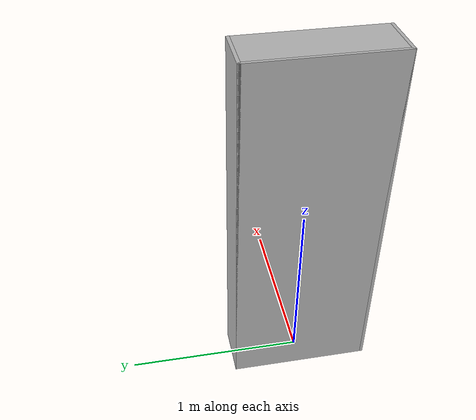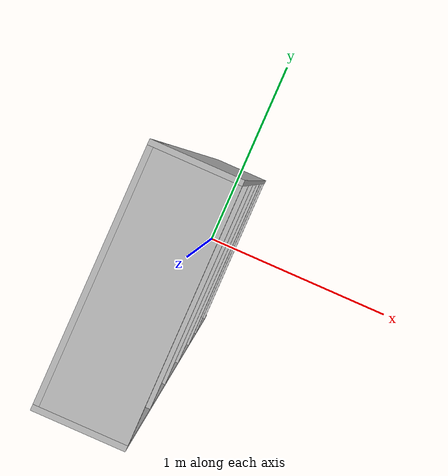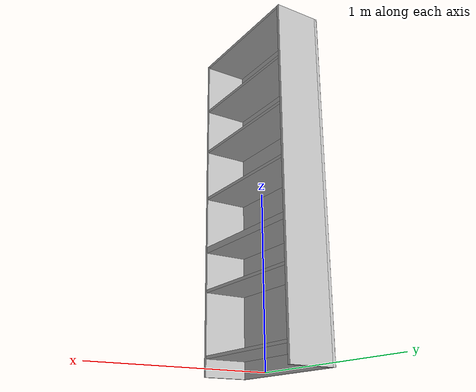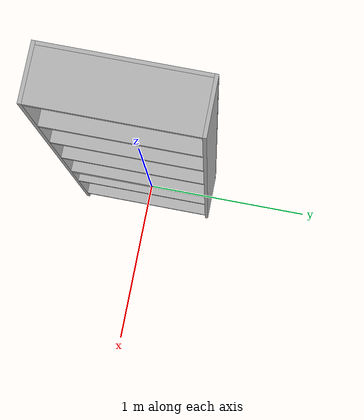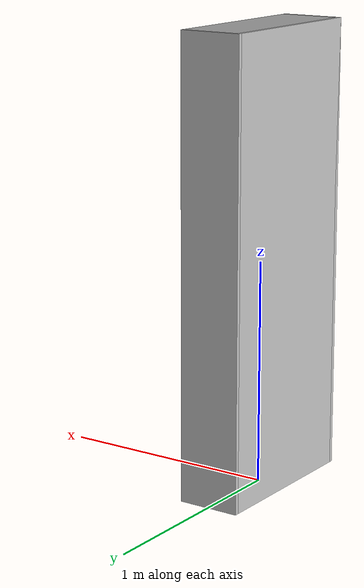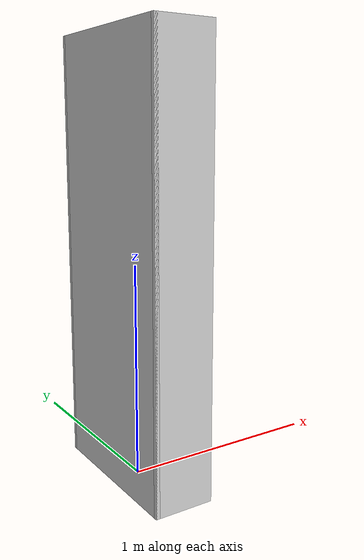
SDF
<?xml version="1.0"?>
<sdf version="1.6">
  <model name="rwc2019/shelf">
    <link name="1_link">
      <collision name="1_col">
        <geometry>
          <box>
            <size>0.28 0.018 2.02</size>
          </box>
        </geometry>
      </collision>
      <visual name="1_vis">
        <geometry>
          <box>
            <size>0.28 0.018 2.02</size>
          </box>
        </geometry>
      </visual>
      <pose>0.0 -0.391 1.01 0 0 0</pose>
    </link>
    <link name="door_link">
      <collision name="door_col">
        <geometry>
          <box>
            <size>0.391 0.018 1.01</size>
          </box>
        </geometry>
      </collision>
      <pose>0.3355 -0.391 0.505 0 0 0</pose>
    </link>
    <link name="2_link">
      <collision name="2_col">
        <geometry>
          <box>
            <size>0.28 0.018 2.02</size>
          </box>
        </geometry>
      </collision>
      <visual name="2_vis">
        <geometry>
          <box>
            <size>0.28 0.018 2.02</size>
          </box>
        </geometry>
      </visual>
      <pose>0.0 0.391 1.01 0 0 0</pose>
    </link>
    <link name="3_link">
      <collision name="3_col">
        <geometry>
          <box>
            <size>0.018 0.8 2.02</size>
          </box>
        </geometry>
      </collision>
      <visual name="3_vis">
        <geometry>
          <box>
            <size>0.018 0.8 2.02</size>
          </box>
        </geometry>
      </visual>
      <pose>-0.131 0.0 1.01 0 0 0</pose>
    </link>
    <link name="4_link">
      <collision name="4_col">
        <geometry>
          <box>
            <size>0.262 0.764 0.018</size>
          </box>
        </geometry>
      </collision>
      <visual name="4_vis">
        <geometry>
          <box>
            <size>0.262 0.764 0.018</size>
          </box>
        </geometry>
      </visual>
      <pose>0.009 0.0 2.011 0 0 0</pose>
    </link>
    <link name="5_link">
      <collision name="5_col">
        <geometry>
          <box>
            <size>0.262 0.764 0.018</size>
          </box>
        </geometry>
      </collision>
      <visual name="5_vis">
        <geometry>
          <box>
            <size>0.262 0.764 0.018</size>
          </box>
        </geometry>
      </visual>
      <pose>0.009 0.0 0.109 0 0 0</pose>
    </link>
    <link name="6_link">
      <collision name="6_col">
        <geometry>
          <box>
            <size>0.262 0.764 0.018</size>
          </box>
        </geometry>
      </collision>
      <visual name="6_vis">
        <geometry>
          <box>
            <size>0.262 0.764 0.018</size>
          </box>
        </geometry>
      </visual>
      <pose>0.009 0.0 0.489 0 0 0</pose>
    </link>
    <link name="7_link">
      <collision name="7_col">
        <geometry>
          <box>
            <size>0.262 0.764 0.038</size>
          </box>
        </geometry>
      </collision>
      <visual name="7_vis">
        <geometry>
          <box>
            <size>0.262 0.764 0.038</size>
          </box>
        </geometry>
      </visual>
      <pose>0.009 0.0 0.739 0 0 0</pose>
    </link>
    <link name="8_link">
      <collision name="8_col">
        <geometry>
          <box>
            <size>0.262 0.764 0.018</size>
          </box>
        </geometry>
      </collision>
      <visual name="8_vis">
        <geometry>
          <box>
            <size>0.262 0.764 0.018</size>
          </box>
        </geometry>
      </visual>
      <pose>0.009 0.0 1.071 0 0 0</pose>
    </link>
    <link name="9_link">
      <collision name="9_col">
        <geometry>
          <box>
            <size>0.262 0.764 0.018</size>
          </box>
        </geometry>
      </collision>
      <visual name="9_vis">
        <geometry>
          <box>
            <size>0.262 0.764 0.018</size>
          </box>
        </geometry>
      </visual>
      <pose>0.009 0.0 1.389 0 0 0</pose>
    </link>
    <link name="10_link">
      <collision name="10_col">
        <geometry>
          <box>
            <size>0.262 0.764 0.018</size>
          </box>
        </geometry>
      </collision>
      <visual name="10_vis">
        <geometry>
          <box>
            <size>0.262 0.764 0.018</size>
          </box>
        </geometry>
      </visual>
      <pose>0.009 0.0 1.679 0 0 0</pose>
    </link>
    <link name="in_front_of">
      <virtual_volume name="in_front_of_vv">
        <geometry>
          <box>
            <size>0.2 0.6 0.01</size>
          </box>
        </geometry>
        <pose>0.64 0.0 0.005 0 0 0</pose>
      </virtual_volume>
    </link>
    <link name="shelf1">
      <virtual_volume name="shelf1_vv">
        <geometry>
          <box>
            <size>0.222 0.704 0.25</size>
          </box>
        </geometry>
        <pose>0.029 0.0 0.263 0 0 0</pose>
      </virtual_volume>
    </link>
    <link name="shelf2">
      <virtual_volume name="shelf2_vv">
        <geometry>
          <box>
            <size>0.222 0.704 0.17</size>
          </box>
        </geometry>
        <pose>0.029 0.0 0.603 0 0 0</pose>
      </virtual_volume>
    </link>
    <link name="shelf3">
      <virtual_volume name="shelf3_vv">
        <geometry>
          <box>
            <size>0.222 0.704 0.25</size>
          </box>
        </geometry>
        <pose>0.029 0.0 0.903 0 0 0</pose>
      </virtual_volume>
    </link>
    <link name="shelf4">
      <virtual_volume name="shelf4_vv">
        <geometry>
          <box>
            <size>0.222 0.704 0.25</size>
          </box>
        </geometry>
        <pose>0.029 0.0 1.225 0 0 0</pose>
      </virtual_volume>
    </link>
    <link name="shelf5">
      <virtual_volume name="shelf5_vv">
        <geometry>
          <box>
            <size>0.222 0.704 0.25</size>
          </box>
        </geometry>
        <pose>0.029 0.0 1.543 0 0 0</pose>
      </virtual_volume>
    </link>
    <link name="shelf6">
      <virtual_volume name="shelf6_vv">
        <geometry>
          <box>
            <size>0.222 0.704 0.25</size>
          </box>
        </geometry>
        <pose>0.029 0.0 1.833 0 0 0</pose>
      </virtual_volume>
    </link>
    <static>true</static>
  </model>
</sdf>
